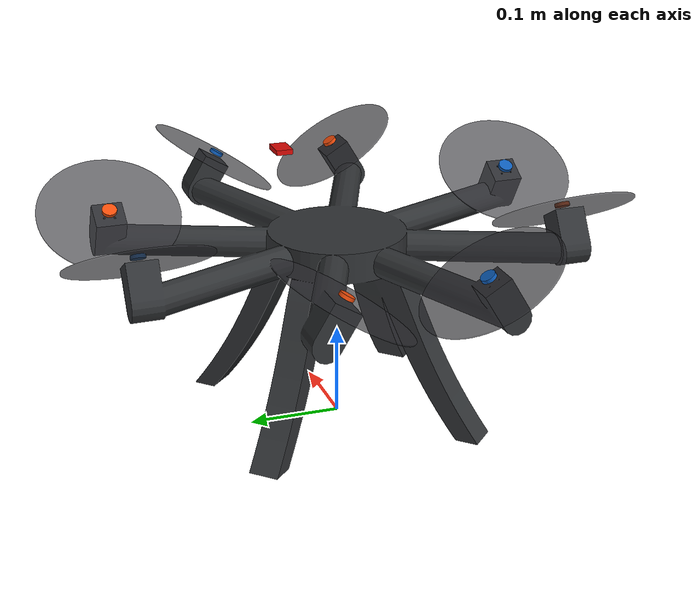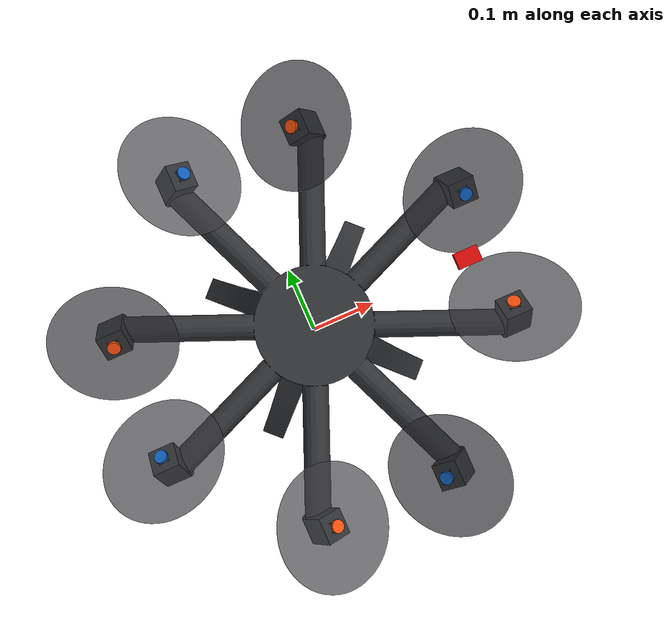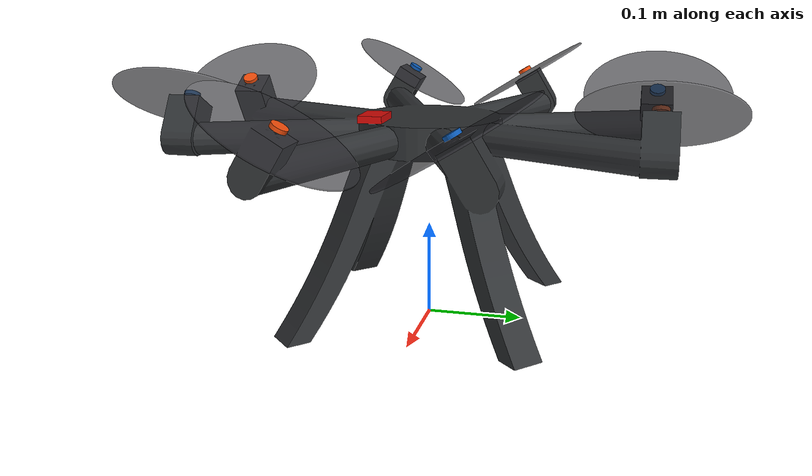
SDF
<?xml version="1.0" encoding="UTF-8"?>
<!-- Created: 14/09/2026; generated by generate_planar_octo_model.py -->
<sdf version="1.9"><model name="planar_octo">
    <pose>0 0 0.183 0 0 0</pose>
    <include merge="true"><uri>model://planar_octo_base</uri></include>
    <link name="rotor_0">
      <pose>0.230969883 -0.074166249 0.052447252 -0.541052068 0.000000000 0.000000000</pose>
      <inertial><mass>0.005</mass><inertia><ixx>7.26e-6</ixx><iyy>7.26e-6</iyy><izz>1.452e-5</izz></inertia></inertial>
      <visual name="cad_propeller"><pose>0.000000000 0.000000000 0.000000000 0.541052068 -0.000000000 -0.000000000</pose><geometry><mesh><uri>model://planar_octo/meshes/rotor_0.stl</uri></mesh></geometry><material><ambient>0.12 0.12 0.13 0.7</ambient><diffuse>0.22 0.22 0.24 0.7</diffuse><specular>0.30 0.30 0.30 1</specular></material></visual>
      <visual name="spin_direction_cap"><pose>0 0 0.006 0 0 0</pose><geometry><cylinder><radius>0.008</radius><length>0.004</length></cylinder></geometry><material><ambient>0.52 0.16 0.02 1</ambient><diffuse>0.95 0.30 0.04 1</diffuse><specular>0.35 0.35 0.35 1</specular></material></visual>
    </link>
    <joint name="rotor_0_joint" type="revolute">
      <parent>base_link</parent><child>rotor_0</child>
      <axis><xyz expressed_in="__model__">0.000000000 0.515038075 0.857167301</xyz><limit><lower>-1e16</lower><upper>1e16</upper></limit></axis>
    </joint>
    <link name="rotor_1">
      <pose>-0.230969883 0.074166249 0.052447252 0.541052068 0.000000000 0.000000000</pose>
      <inertial><mass>0.005</mass><inertia><ixx>7.26e-6</ixx><iyy>7.26e-6</iyy><izz>1.452e-5</izz></inertia></inertial>
      <visual name="cad_propeller"><pose>0.000000000 0.000000000 0.000000000 -0.541052068 -0.000000000 -0.000000000</pose><geometry><mesh><uri>model://planar_octo/meshes/rotor_1.stl</uri></mesh></geometry><material><ambient>0.12 0.12 0.13 0.7</ambient><diffuse>0.22 0.22 0.24 0.7</diffuse><specular>0.30 0.30 0.30 1</specular></material></visual>
      <visual name="spin_direction_cap"><pose>0 0 0.006 0 0 0</pose><geometry><cylinder><radius>0.008</radius><length>0.004</length></cylinder></geometry><material><ambient>0.52 0.16 0.02 1</ambient><diffuse>0.95 0.30 0.04 1</diffuse><specular>0.35 0.35 0.35 1</specular></material></visual>
    </link>
    <joint name="rotor_1_joint" type="revolute">
      <parent>base_link</parent><child>rotor_1</child>
      <axis><xyz expressed_in="__model__">0.000000000 -0.515038075 0.857167301</xyz><limit><lower>-1e16</lower><upper>1e16</upper></limit></axis>
    </joint>
    <link name="rotor_2">
      <pose>0.074166249 -0.230969883 0.052447252 0.000000000 -0.541052068 0.000000000</pose>
      <inertial><mass>0.005</mass><inertia><ixx>7.26e-6</ixx><iyy>7.26e-6</iyy><izz>1.452e-5</izz></inertia></inertial>
      <visual name="cad_propeller"><pose>0.000000000 0.000000000 0.000000000 -0.000000000 0.541052068 -0.000000000</pose><geometry><mesh><uri>model://planar_octo/meshes/rotor_2.stl</uri></mesh></geometry><material><ambient>0.12 0.12 0.13 0.7</ambient><diffuse>0.22 0.22 0.24 0.7</diffuse><specular>0.30 0.30 0.30 1</specular></material></visual>
      <visual name="spin_direction_cap"><pose>0 0 0.006 0 0 0</pose><geometry><cylinder><radius>0.008</radius><length>0.004</length></cylinder></geometry><material><ambient>0.03 0.18 0.34 1</ambient><diffuse>0.05 0.36 0.72 1</diffuse><specular>0.35 0.35 0.35 1</specular></material></visual>
    </link>
    <joint name="rotor_2_joint" type="revolute">
      <parent>base_link</parent><child>rotor_2</child>
      <axis><xyz expressed_in="__model__">-0.515038075 0.000000000 0.857167301</xyz><limit><lower>-1e16</lower><upper>1e16</upper></limit></axis>
    </joint>
    <link name="rotor_3">
      <pose>-0.230969883 -0.074166249 0.052447252 -0.541052068 0.000000000 0.000000000</pose>
      <inertial><mass>0.005</mass><inertia><ixx>7.26e-6</ixx><iyy>7.26e-6</iyy><izz>1.452e-5</izz></inertia></inertial>
      <visual name="cad_propeller"><pose>0.000000000 0.000000000 0.000000000 0.541052068 -0.000000000 -0.000000000</pose><geometry><mesh><uri>model://planar_octo/meshes/rotor_3.stl</uri></mesh></geometry><material><ambient>0.12 0.12 0.13 0.7</ambient><diffuse>0.22 0.22 0.24 0.7</diffuse><specular>0.30 0.30 0.30 1</specular></material></visual>
      <visual name="spin_direction_cap"><pose>0 0 0.006 0 0 0</pose><geometry><cylinder><radius>0.008</radius><length>0.004</length></cylinder></geometry><material><ambient>0.03 0.18 0.34 1</ambient><diffuse>0.05 0.36 0.72 1</diffuse><specular>0.35 0.35 0.35 1</specular></material></visual>
    </link>
    <joint name="rotor_3_joint" type="revolute">
      <parent>base_link</parent><child>rotor_3</child>
      <axis><xyz expressed_in="__model__">0.000000000 0.515038075 0.857167301</xyz><limit><lower>-1e16</lower><upper>1e16</upper></limit></axis>
    </joint>
    <link name="rotor_4">
      <pose>0.230969883 0.074166249 0.052447252 0.541052068 0.000000000 0.000000000</pose>
      <inertial><mass>0.005</mass><inertia><ixx>7.26e-6</ixx><iyy>7.26e-6</iyy><izz>1.452e-5</izz></inertia></inertial>
      <visual name="cad_propeller"><pose>0.000000000 0.000000000 0.000000000 -0.541052068 -0.000000000 -0.000000000</pose><geometry><mesh><uri>model://planar_octo/meshes/rotor_4.stl</uri></mesh></geometry><material><ambient>0.12 0.12 0.13 0.7</ambient><diffuse>0.22 0.22 0.24 0.7</diffuse><specular>0.30 0.30 0.30 1</specular></material></visual>
      <visual name="spin_direction_cap"><pose>0 0 0.006 0 0 0</pose><geometry><cylinder><radius>0.008</radius><length>0.004</length></cylinder></geometry><material><ambient>0.03 0.18 0.34 1</ambient><diffuse>0.05 0.36 0.72 1</diffuse><specular>0.35 0.35 0.35 1</specular></material></visual>
    </link>
    <joint name="rotor_4_joint" type="revolute">
      <parent>base_link</parent><child>rotor_4</child>
      <axis><xyz expressed_in="__model__">0.000000000 -0.515038075 0.857167301</xyz><limit><lower>-1e16</lower><upper>1e16</upper></limit></axis>
    </joint>
    <link name="rotor_5">
      <pose>-0.074166249 0.230969883 0.052447252 0.000000000 0.541052068 0.000000000</pose>
      <inertial><mass>0.005</mass><inertia><ixx>7.26e-6</ixx><iyy>7.26e-6</iyy><izz>1.452e-5</izz></inertia></inertial>
      <visual name="cad_propeller"><pose>0.000000000 0.000000000 0.000000000 -0.000000000 -0.541052068 -0.000000000</pose><geometry><mesh><uri>model://planar_octo/meshes/rotor_5.stl</uri></mesh></geometry><material><ambient>0.12 0.12 0.13 0.7</ambient><diffuse>0.22 0.22 0.24 0.7</diffuse><specular>0.30 0.30 0.30 1</specular></material></visual>
      <visual name="spin_direction_cap"><pose>0 0 0.006 0 0 0</pose><geometry><cylinder><radius>0.008</radius><length>0.004</length></cylinder></geometry><material><ambient>0.03 0.18 0.34 1</ambient><diffuse>0.05 0.36 0.72 1</diffuse><specular>0.35 0.35 0.35 1</specular></material></visual>
    </link>
    <joint name="rotor_5_joint" type="revolute">
      <parent>base_link</parent><child>rotor_5</child>
      <axis><xyz expressed_in="__model__">0.515038075 0.000000000 0.857167301</xyz><limit><lower>-1e16</lower><upper>1e16</upper></limit></axis>
    </joint>
    <link name="rotor_6">
      <pose>0.074166249 0.230969883 0.052447252 0.000000000 -0.541052068 0.000000000</pose>
      <inertial><mass>0.005</mass><inertia><ixx>7.26e-6</ixx><iyy>7.26e-6</iyy><izz>1.452e-5</izz></inertia></inertial>
      <visual name="cad_propeller"><pose>0.000000000 0.000000000 0.000000000 -0.000000000 0.541052068 -0.000000000</pose><geometry><mesh><uri>model://planar_octo/meshes/rotor_6.stl</uri></mesh></geometry><material><ambient>0.12 0.12 0.13 0.7</ambient><diffuse>0.22 0.22 0.24 0.7</diffuse><specular>0.30 0.30 0.30 1</specular></material></visual>
      <visual name="spin_direction_cap"><pose>0 0 0.006 0 0 0</pose><geometry><cylinder><radius>0.008</radius><length>0.004</length></cylinder></geometry><material><ambient>0.52 0.16 0.02 1</ambient><diffuse>0.95 0.30 0.04 1</diffuse><specular>0.35 0.35 0.35 1</specular></material></visual>
    </link>
    <joint name="rotor_6_joint" type="revolute">
      <parent>base_link</parent><child>rotor_6</child>
      <axis><xyz expressed_in="__model__">-0.515038075 0.000000000 0.857167301</xyz><limit><lower>-1e16</lower><upper>1e16</upper></limit></axis>
    </joint>
    <link name="rotor_7">
      <pose>-0.074166249 -0.230969883 0.052447252 0.000000000 0.541052068 0.000000000</pose>
      <inertial><mass>0.005</mass><inertia><ixx>7.26e-6</ixx><iyy>7.26e-6</iyy><izz>1.452e-5</izz></inertia></inertial>
      <visual name="cad_propeller"><pose>0.000000000 0.000000000 0.000000000 -0.000000000 -0.541052068 -0.000000000</pose><geometry><mesh><uri>model://planar_octo/meshes/rotor_7.stl</uri></mesh></geometry><material><ambient>0.12 0.12 0.13 0.7</ambient><diffuse>0.22 0.22 0.24 0.7</diffuse><specular>0.30 0.30 0.30 1</specular></material></visual>
      <visual name="spin_direction_cap"><pose>0 0 0.006 0 0 0</pose><geometry><cylinder><radius>0.008</radius><length>0.004</length></cylinder></geometry><material><ambient>0.52 0.16 0.02 1</ambient><diffuse>0.95 0.30 0.04 1</diffuse><specular>0.35 0.35 0.35 1</specular></material></visual>
    </link>
    <joint name="rotor_7_joint" type="revolute">
      <parent>base_link</parent><child>rotor_7</child>
      <axis><xyz expressed_in="__model__">0.515038075 0.000000000 0.857167301</xyz><limit><lower>-1e16</lower><upper>1e16</upper></limit></axis>
    </joint>
    <plugin filename="gz-sim-multicopter-motor-model-system" name="gz::sim::systems::MulticopterMotorModel">
      <jointName>rotor_0_joint</jointName><linkName>rotor_0</linkName>
      <turningDirection>cw</turningDirection>
      <timeConstantUp>0.03</timeConstantUp><timeConstantDown>0.03</timeConstantDown>
      <rotorDragCoefficient>8.06428e-05</rotorDragCoefficient><rollingMomentCoefficient>1e-06</rollingMomentCoefficient>
      <maxRotVelocity>1774</maxRotVelocity><motorConstant>1.2138e-06</motorConstant><momentConstant>0.00857637</momentConstant>
      <commandSubTopic>command/motor_speed</commandSubTopic><actuator_number>0</actuator_number>
      <rotorVelocitySlowdownSim>10</rotorVelocitySlowdownSim><motorType>velocity</motorType>
    </plugin>
    <plugin filename="gz-sim-multicopter-motor-model-system" name="gz::sim::systems::MulticopterMotorModel">
      <jointName>rotor_1_joint</jointName><linkName>rotor_1</linkName>
      <turningDirection>cw</turningDirection>
      <timeConstantUp>0.03</timeConstantUp><timeConstantDown>0.03</timeConstantDown>
      <rotorDragCoefficient>8.06428e-05</rotorDragCoefficient><rollingMomentCoefficient>1e-06</rollingMomentCoefficient>
      <maxRotVelocity>1774</maxRotVelocity><motorConstant>1.2138e-06</motorConstant><momentConstant>0.00857637</momentConstant>
      <commandSubTopic>command/motor_speed</commandSubTopic><actuator_number>1</actuator_number>
      <rotorVelocitySlowdownSim>10</rotorVelocitySlowdownSim><motorType>velocity</motorType>
    </plugin>
    <plugin filename="gz-sim-multicopter-motor-model-system" name="gz::sim::systems::MulticopterMotorModel">
      <jointName>rotor_2_joint</jointName><linkName>rotor_2</linkName>
      <turningDirection>ccw</turningDirection>
      <timeConstantUp>0.03</timeConstantUp><timeConstantDown>0.03</timeConstantDown>
      <rotorDragCoefficient>8.06428e-05</rotorDragCoefficient><rollingMomentCoefficient>1e-06</rollingMomentCoefficient>
      <maxRotVelocity>1774</maxRotVelocity><motorConstant>1.2138e-06</motorConstant><momentConstant>0.00857637</momentConstant>
      <commandSubTopic>command/motor_speed</commandSubTopic><actuator_number>2</actuator_number>
      <rotorVelocitySlowdownSim>10</rotorVelocitySlowdownSim><motorType>velocity</motorType>
    </plugin>
    <plugin filename="gz-sim-multicopter-motor-model-system" name="gz::sim::systems::MulticopterMotorModel">
      <jointName>rotor_3_joint</jointName><linkName>rotor_3</linkName>
      <turningDirection>ccw</turningDirection>
      <timeConstantUp>0.03</timeConstantUp><timeConstantDown>0.03</timeConstantDown>
      <rotorDragCoefficient>8.06428e-05</rotorDragCoefficient><rollingMomentCoefficient>1e-06</rollingMomentCoefficient>
      <maxRotVelocity>1774</maxRotVelocity><motorConstant>1.2138e-06</motorConstant><momentConstant>0.00857637</momentConstant>
      <commandSubTopic>command/motor_speed</commandSubTopic><actuator_number>3</actuator_number>
      <rotorVelocitySlowdownSim>10</rotorVelocitySlowdownSim><motorType>velocity</motorType>
    </plugin>
    <plugin filename="gz-sim-multicopter-motor-model-system" name="gz::sim::systems::MulticopterMotorModel">
      <jointName>rotor_4_joint</jointName><linkName>rotor_4</linkName>
      <turningDirection>ccw</turningDirection>
      <timeConstantUp>0.03</timeConstantUp><timeConstantDown>0.03</timeConstantDown>
      <rotorDragCoefficient>8.06428e-05</rotorDragCoefficient><rollingMomentCoefficient>1e-06</rollingMomentCoefficient>
      <maxRotVelocity>1774</maxRotVelocity><motorConstant>1.2138e-06</motorConstant><momentConstant>0.00857637</momentConstant>
      <commandSubTopic>command/motor_speed</commandSubTopic><actuator_number>4</actuator_number>
      <rotorVelocitySlowdownSim>10</rotorVelocitySlowdownSim><motorType>velocity</motorType>
    </plugin>
    <plugin filename="gz-sim-multicopter-motor-model-system" name="gz::sim::systems::MulticopterMotorModel">
      <jointName>rotor_5_joint</jointName><linkName>rotor_5</linkName>
      <turningDirection>ccw</turningDirection>
      <timeConstantUp>0.03</timeConstantUp><timeConstantDown>0.03</timeConstantDown>
      <rotorDragCoefficient>8.06428e-05</rotorDragCoefficient><rollingMomentCoefficient>1e-06</rollingMomentCoefficient>
      <maxRotVelocity>1774</maxRotVelocity><motorConstant>1.2138e-06</motorConstant><momentConstant>0.00857637</momentConstant>
      <commandSubTopic>command/motor_speed</commandSubTopic><actuator_number>5</actuator_number>
      <rotorVelocitySlowdownSim>10</rotorVelocitySlowdownSim><motorType>velocity</motorType>
    </plugin>
    <plugin filename="gz-sim-multicopter-motor-model-system" name="gz::sim::systems::MulticopterMotorModel">
      <jointName>rotor_6_joint</jointName><linkName>rotor_6</linkName>
      <turningDirection>cw</turningDirection>
      <timeConstantUp>0.03</timeConstantUp><timeConstantDown>0.03</timeConstantDown>
      <rotorDragCoefficient>8.06428e-05</rotorDragCoefficient><rollingMomentCoefficient>1e-06</rollingMomentCoefficient>
      <maxRotVelocity>1774</maxRotVelocity><motorConstant>1.2138e-06</motorConstant><momentConstant>0.00857637</momentConstant>
      <commandSubTopic>command/motor_speed</commandSubTopic><actuator_number>6</actuator_number>
      <rotorVelocitySlowdownSim>10</rotorVelocitySlowdownSim><motorType>velocity</motorType>
    </plugin>
    <plugin filename="gz-sim-multicopter-motor-model-system" name="gz::sim::systems::MulticopterMotorModel">
      <jointName>rotor_7_joint</jointName><linkName>rotor_7</linkName>
      <turningDirection>cw</turningDirection>
      <timeConstantUp>0.03</timeConstantUp><timeConstantDown>0.03</timeConstantDown>
      <rotorDragCoefficient>8.06428e-05</rotorDragCoefficient><rollingMomentCoefficient>1e-06</rollingMomentCoefficient>
      <maxRotVelocity>1774</maxRotVelocity><motorConstant>1.2138e-06</motorConstant><momentConstant>0.00857637</momentConstant>
      <commandSubTopic>command/motor_speed</commandSubTopic><actuator_number>7</actuator_number>
      <rotorVelocitySlowdownSim>10</rotorVelocitySlowdownSim><motorType>velocity</motorType>
    </plugin>
  </model></sdf>

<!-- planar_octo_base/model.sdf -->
<sdf version="1.9"><model name="planar_octo_base"><self_collide>false</self_collide><static>false</static>
  <link name="base_link">
    <inertial><mass>1.460</mass><inertia><ixx>0.024068</ixx><ixy>-0.000000</ixy><ixz>0.000000</ixz><iyy>0.024067</iyy><iyz>-0.000000</iyz><izz>0.039599</izz></inertia></inertial><gravity>true</gravity>
    <visual name="cad_stationary_assembly"><geometry><mesh><uri>model://planar_octo_base/meshes/stationary_assembly.stl</uri></mesh></geometry><material><ambient>0.10 0.105 0.11 1</ambient><diffuse>0.19 0.20 0.21 1</diffuse><specular>0.32 0.32 0.32 1</specular></material></visual>
    <visual name="front_marker"><pose>0.200 0 0.0638 0 0 0</pose><geometry><box><size>0.030 0.020 0.006</size></box></geometry><material><ambient>0.45 0.02 0.015 1</ambient><diffuse>0.85 0.04 0.025 1</diffuse></material></visual>
    <collision name="body_collision"><pose>0 0 0.0299 0 0 0</pose><geometry><cylinder><radius>0.2475</radius><length>0.0598</length></cylinder></geometry></collision>
    <collision name="landing_gear_collision"><pose>0 0 -0.1745 0 0 0</pose><geometry><cylinder><radius>0.1354</radius><length>0.010</length></cylinder></geometry></collision>
    <sensor name="air_pressure_sensor" type="air_pressure"><always_on>1</always_on><update_rate>50</update_rate><air_pressure><pressure><noise type="gaussian"><mean>0</mean><stddev>3</stddev></noise></pressure></air_pressure></sensor>
    <sensor name="magnetometer_sensor" type="magnetometer"><always_on>1</always_on><update_rate>100</update_rate><magnetometer><x><noise type="gaussian"><stddev>0.0001</stddev></noise></x><y><noise type="gaussian"><stddev>0.0001</stddev></noise></y><z><noise type="gaussian"><stddev>0.0001</stddev></noise></z></magnetometer></sensor>
    <sensor name="imu_sensor" type="imu"><always_on>1</always_on><update_rate>250</update_rate><imu><angular_velocity><x><noise type="gaussian"><mean>0</mean><stddev>0.0008726646</stddev></noise></x><y><noise type="gaussian"><mean>0</mean><stddev>0.0008726646</stddev></noise></y><z><noise type="gaussian"><mean>0</mean><stddev>0.0008726646</stddev></noise></z></angular_velocity><linear_acceleration><x><noise type="gaussian"><mean>0</mean><stddev>0.00637</stddev></noise></x><y><noise type="gaussian"><mean>0</mean><stddev>0.00637</stddev></noise></y><z><noise type="gaussian"><mean>0</mean><stddev>0.00686</stddev></noise></z></linear_acceleration></imu></sensor>
    <sensor name="navsat_sensor" type="navsat"><always_on>1</always_on><update_rate>30</update_rate></sensor>
  </link>
</model></sdf>
